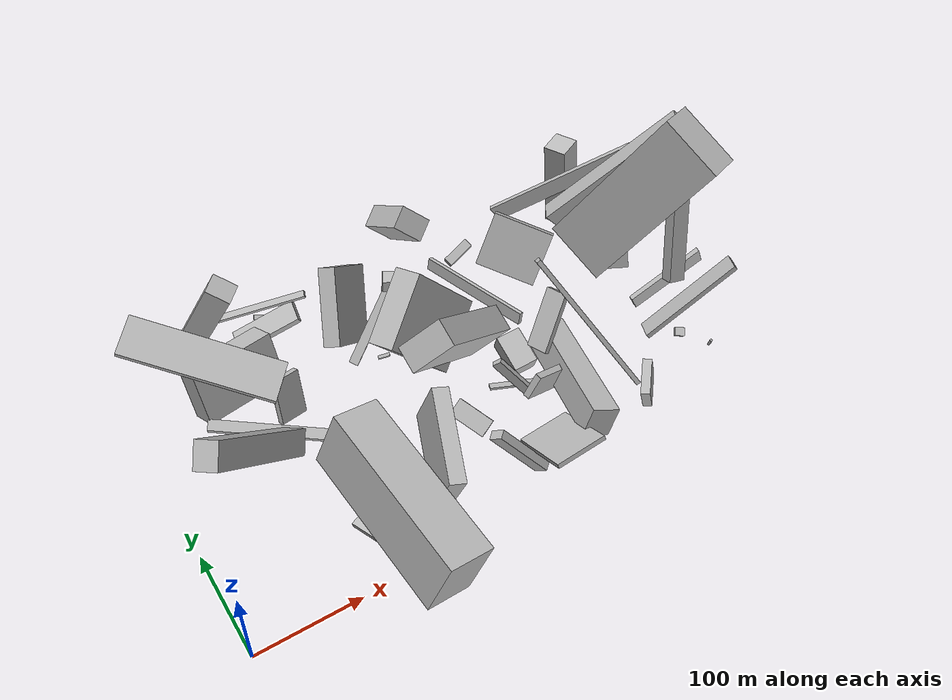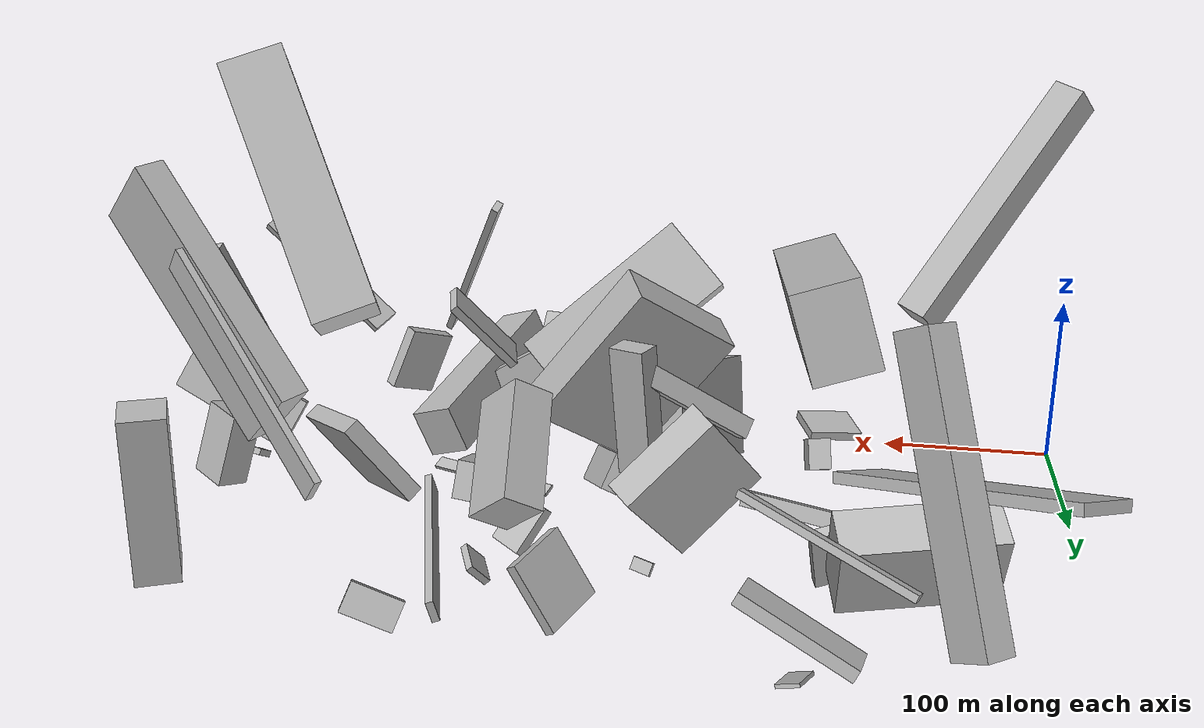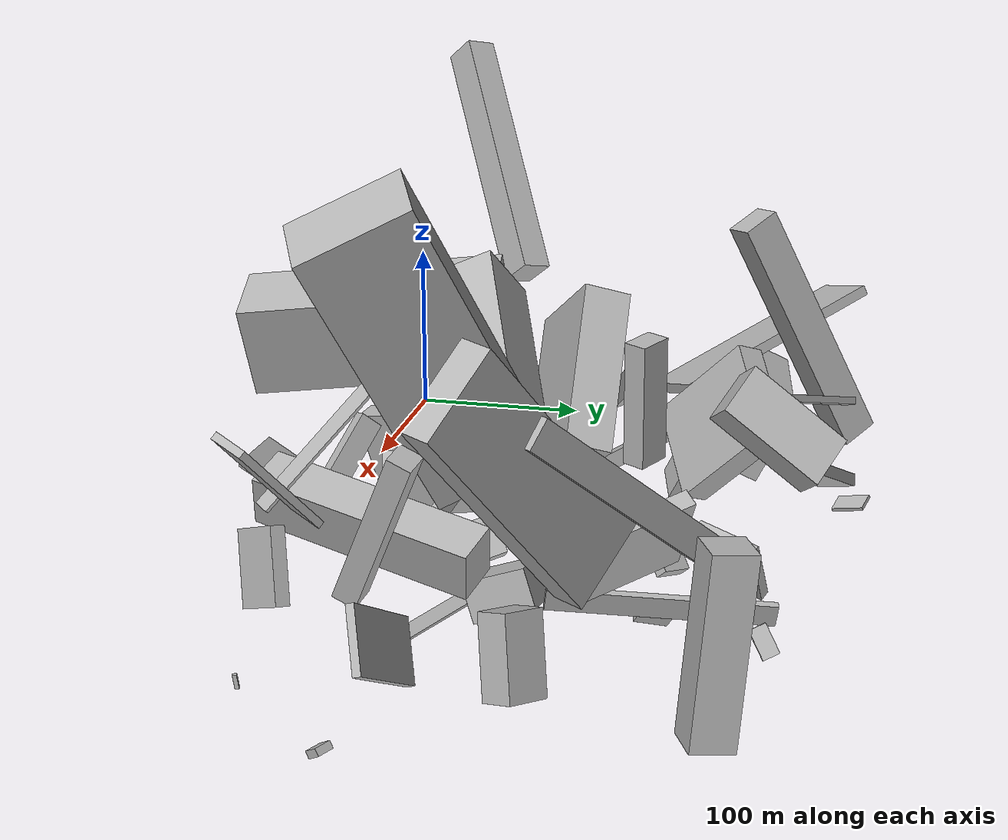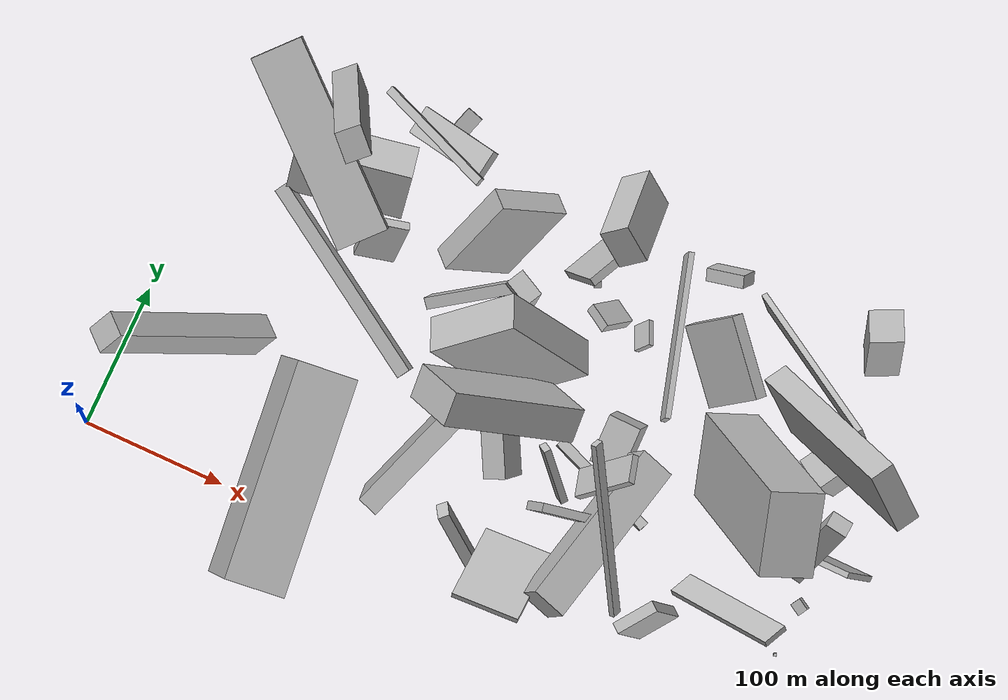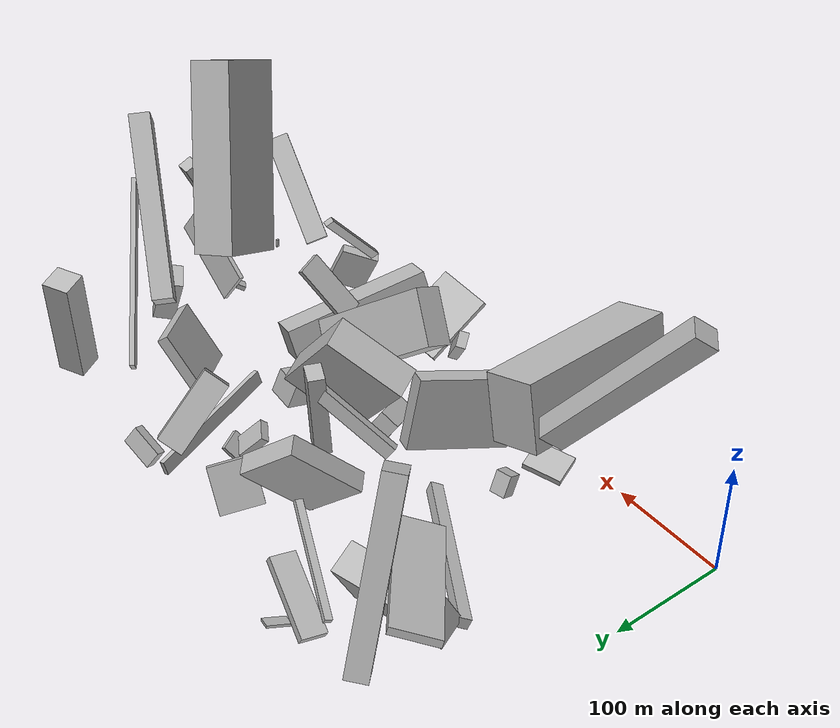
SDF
<sdf version="1.6">
 <world name="default">
  <model name="building_1">
   <static>0</static>
   <pose>120.68918492601038 161.45133720720116 22.464505296555593 -1.9657326540542763 -0.10031874197089789 2.5826246045132604</pose>
   <link name="link">
    <gravity>0</gravity>
    <pose>0 0 5.0 0 0 0</pose>
    <collision name="collision"><geometry><box><size>150 9 10</size></box></geometry></collision>
    <visual name="visual">
     <cast_shadows>0</cast_shadows>
     <geometry><box><size>150 9 10</size></box></geometry>
     <material>
      <script>
       <uri>model://HANNAS_wall/materials/scripts</uri>
       <uri>model://HANNAS_wall/materials/textures</uri>
       <name>vrc/HANNAS_wall</name>
      </script>
     </material>
    </visual>
   </link>
  </model>
  <model name="building_2">
   <static>0</static>
   <pose>130.73497278025522 190.37755811783416 24.62487884282549 1.9944365662318615 -0.22942561202438608 -2.8692951318957665</pose>
   <link name="link">
    <gravity>0</gravity>
    <pose>0 0 3.0 0 0 0</pose>
    <collision name="collision"><geometry><box><size>28 42 6</size></box></geometry></collision>
    <visual name="visual">
     <cast_shadows>0</cast_shadows>
     <geometry><box><size>28 42 6</size></box></geometry>
     <material>
      <script>
       <uri>model://HANNAS_wall/materials/scripts</uri>
       <uri>model://HANNAS_wall/materials/textures</uri>
       <name>vrc/HANNAS_wall</name>
      </script>
     </material>
    </visual>
   </link>
  </model>
  <model name="building_3">
   <static>0</static>
   <pose>352.0127641518744 68.85369513316131 122.52426138870983 0.9390544121925753 -0.49572315677490775 -0.017234432638625136</pose>
   <link name="link">
    <gravity>0</gravity>
    <pose>0 0 3.5 0 0 0</pose>
    <collision name="collision"><geometry><box><size>4 143 7</size></box></geometry></collision>
    <visual name="visual">
     <cast_shadows>0</cast_shadows>
     <geometry><box><size>4 143 7</size></box></geometry>
     <material>
      <script>
       <uri>model://HANNAS_wall/materials/scripts</uri>
       <uri>model://HANNAS_wall/materials/textures</uri>
       <name>vrc/HANNAS_wall</name>
      </script>
     </material>
    </visual>
   </link>
  </model>
  <model name="building_4">
   <static>0</static>
   <pose>351.14596619945087 272.3230376288432 16.891708726268188 -2.0396949758571123 0.4229398748092815 -2.9987078818574395</pose>
   <link name="link">
    <gravity>0</gravity>
    <pose>0 0 4.5 0 0 0</pose>
    <collision name="collision"><geometry><box><size>28 16 9</size></box></geometry></collision>
    <visual name="visual">
     <cast_shadows>0</cast_shadows>
     <geometry><box><size>28 16 9</size></box></geometry>
     <material>
      <script>
       <uri>model://HANNAS_wall/materials/scripts</uri>
       <uri>model://HANNAS_wall/materials/textures</uri>
       <name>vrc/HANNAS_wall</name>
      </script>
     </material>
    </visual>
   </link>
  </model>
  <model name="building_6">
   <static>0</static>
   <pose>92.53380347028127 89.72127168961224 117.08261155660414 0.6617011113182438 -0.2046360781055444 -0.725545873856405</pose>
   <link name="link">
    <gravity>0</gravity>
    <pose>0 0 75.0 0 0 0</pose>
    <collision name="collision"><geometry><box><size>18 21 150</size></box></geometry></collision>
    <visual name="visual">
     <cast_shadows>0</cast_shadows>
     <geometry><box><size>18 21 150</size></box></geometry>
     <material>
      <script>
       <uri>model://HANNAS_wall/materials/scripts</uri>
       <uri>model://HANNAS_wall/materials/textures</uri>
       <name>vrc/HANNAS_wall</name>
      </script>
     </material>
    </visual>
   </link>
  </model>
  <model name="building_10">
   <static>0</static>
   <pose>269.6916527284526 152.64854960087126 67.81588128043366 0.6026211159575662 -0.29611658093652593 -1.1497511403101692</pose>
   <link name="link">
    <gravity>0</gravity>
    <pose>0 0 43.5 0 0 0</pose>
    <collision name="collision"><geometry><box><size>25 66 87</size></box></geometry></collision>
    <visual name="visual">
     <cast_shadows>0</cast_shadows>
     <geometry><box><size>25 66 87</size></box></geometry>
     <material>
      <script>
       <uri>model://HANNAS_wall/materials/scripts</uri>
       <uri>model://HANNAS_wall/materials/textures</uri>
       <name>vrc/HANNAS_wall</name>
      </script>
     </material>
    </visual>
   </link>
  </model>
  <model name="building_11">
   <static>0</static>
   <pose>208.10366239251405 177.88101256907066 90.39304304160237 -0.62271322165962 -0.26697087066892317 2.2608271372268716</pose>
   <link name="link">
    <gravity>0</gravity>
    <pose>0 0 5.5 0 0 0</pose>
    <collision name="collision"><geometry><box><size>8 71 11</size></box></geometry></collision>
    <visual name="visual">
     <cast_shadows>0</cast_shadows>
     <geometry><box><size>8 71 11</size></box></geometry>
     <material>
      <script>
       <uri>model://HANNAS_wall/materials/scripts</uri>
       <uri>model://HANNAS_wall/materials/textures</uri>
       <name>vrc/HANNAS_wall</name>
      </script>
     </material>
    </visual>
   </link>
  </model>
  <model name="building_19">
   <static>0</static>
   <pose>134.7772566717212 15.240827884145318 69.0632913056574 0.2894544298195925 -0.11280912041668863 1.6719229686661174</pose>
   <link name="link">
    <gravity>0</gravity>
    <pose>0 0 28.0 0 0 0</pose>
    <collision name="collision"><geometry><box><size>150 42 56</size></box></geometry></collision>
    <visual name="visual">
     <cast_shadows>0</cast_shadows>
     <geometry><box><size>150 42 56</size></box></geometry>
     <material>
      <script>
       <uri>model://HANNAS_wall/materials/scripts</uri>
       <uri>model://HANNAS_wall/materials/textures</uri>
       <name>vrc/HANNAS_wall</name>
      </script>
     </material>
    </visual>
   </link>
  </model>
  <model name="building_20">
   <static>0</static>
   <pose>406.2985025229419 41.731602334816884 56.30317270117865 1.9301400106152236 -0.1741453656008983 -0.7145502059853779</pose>
   <link name="link">
    <gravity>0</gravity>
    <pose>0 0 15.5 0 0 0</pose>
    <collision name="collision"><geometry><box><size>8 39 31</size></box></geometry></collision>
    <visual name="visual">
     <cast_shadows>0</cast_shadows>
     <geometry><box><size>8 39 31</size></box></geometry>
     <material>
      <script>
       <uri>model://HANNAS_wall/materials/scripts</uri>
       <uri>model://HANNAS_wall/materials/textures</uri>
       <name>vrc/HANNAS_wall</name>
      </script>
     </material>
    </visual>
   </link>
  </model>
  <model name="building_23">
   <static>0</static>
   <pose>122.0657754250803 182.04361859381285 62.13934422297965 -1.3091612095978662 -0.23787313093001133 0.7982923186898688</pose>
   <link name="link">
    <gravity>0</gravity>
    <pose>0 0 70.0 0 0 0</pose>
    <collision name="collision"><geometry><box><size>37 6 140</size></box></geometry></collision>
    <visual name="visual">
     <cast_shadows>0</cast_shadows>
     <geometry><box><size>37 6 140</size></box></geometry>
     <material>
      <script>
       <uri>model://HANNAS_wall/materials/scripts</uri>
       <uri>model://HANNAS_wall/materials/textures</uri>
       <name>vrc/HANNAS_wall</name>
      </script>
     </material>
    </visual>
   </link>
  </model>
  <model name="building_27">
   <static>0</static>
   <pose>231.81833110050755 186.4684938501138 58.32583272100922 0.053317810930111814 -0.05891769316808183 2.6690680532145854</pose>
   <link name="link">
    <gravity>0</gravity>
    <pose>0 0 34.5 0 0 0</pose>
    <collision name="collision"><geometry><box><size>20 13 69</size></box></geometry></collision>
    <visual name="visual">
     <cast_shadows>0</cast_shadows>
     <geometry><box><size>20 13 69</size></box></geometry>
     <material>
      <script>
       <uri>model://HANNAS_wall/materials/scripts</uri>
       <uri>model://HANNAS_wall/materials/textures</uri>
       <name>vrc/HANNAS_wall</name>
      </script>
     </material>
    </visual>
   </link>
  </model>
  <model name="building_28">
   <static>0</static>
   <pose>409.78417329256786 57.91215758363532 84.76116309426942 -0.4402261223009895 0.7804004660410867 -0.7560465942532574</pose>
   <link name="link">
    <gravity>0</gravity>
    <pose>0 0 46.5 0 0 0</pose>
    <collision name="collision"><geometry><box><size>4 18 93</size></box></geometry></collision>
    <visual name="visual">
     <cast_shadows>0</cast_shadows>
     <geometry><box><size>4 18 93</size></box></geometry>
     <material>
      <script>
       <uri>model://HANNAS_wall/materials/scripts</uri>
       <uri>model://HANNAS_wall/materials/textures</uri>
       <name>vrc/HANNAS_wall</name>
      </script>
     </material>
    </visual>
   </link>
  </model>
  <model name="building_30">
   <static>0</static>
   <pose>257.9153695807103 92.15419698621969 22.5616210501819 2.607225962856432 -0.2615098005218977 2.056325890839951</pose>
   <link name="link">
    <gravity>0</gravity>
    <pose>0 0 11.0 0 0 0</pose>
    <collision name="collision"><geometry><box><size>35 17 22</size></box></geometry></collision>
    <visual name="visual">
     <cast_shadows>0</cast_shadows>
     <geometry><box><size>35 17 22</size></box></geometry>
     <material>
      <script>
       <uri>model://HANNAS_wall/materials/scripts</uri>
       <uri>model://HANNAS_wall/materials/textures</uri>
       <name>vrc/HANNAS_wall</name>
      </script>
     </material>
    </visual>
   </link>
  </model>
  <model name="building_31">
   <static>0</static>
   <pose>336.20162663925566 214.10482475108705 16.428369056676065 -0.24894715985904242 -0.10599092141484638 -1.2882932310939565</pose>
   <link name="link">
    <gravity>0</gravity>
    <pose>0 0 6.0 0 0 0</pose>
    <collision name="collision"><geometry><box><size>116 4 12</size></box></geometry></collision>
    <visual name="visual">
     <cast_shadows>0</cast_shadows>
     <geometry><box><size>116 4 12</size></box></geometry>
     <material>
      <script>
       <uri>model://HANNAS_wall/materials/scripts</uri>
       <uri>model://HANNAS_wall/materials/textures</uri>
       <name>vrc/HANNAS_wall</name>
      </script>
     </material>
    </visual>
   </link>
  </model>
  <model name="building_32">
   <static>0</static>
   <pose>334.2656831763497 100.27506406508184 101.9107099714146 2.7446630725467176 -0.848288243672968 0.5714786076773894</pose>
   <link name="link">
    <gravity>0</gravity>
    <pose>0 0 2.5 0 0 0</pose>
    <collision name="collision"><geometry><box><size>53 20 5</size></box></geometry></collision>
    <visual name="visual">
     <cast_shadows>0</cast_shadows>
     <geometry><box><size>53 20 5</size></box></geometry>
     <material>
      <script>
       <uri>model://HANNAS_wall/materials/scripts</uri>
       <uri>model://HANNAS_wall/materials/textures</uri>
       <name>vrc/HANNAS_wall</name>
      </script>
     </material>
    </visual>
   </link>
  </model>
  <model name="building_35">
   <static>0</static>
   <pose>218.79266667025968 65.33158002083997 41.70170531443302 1.4018804081164236 0.23228788188039837 -1.9302767267517424</pose>
   <link name="link">
    <gravity>0</gravity>
    <pose>0 0 7.5 0 0 0</pose>
    <collision name="collision"><geometry><box><size>85 61 15</size></box></geometry></collision>
    <visual name="visual">
     <cast_shadows>0</cast_shadows>
     <geometry><box><size>85 61 15</size></box></geometry>
     <material>
      <script>
       <uri>model://HANNAS_wall/materials/scripts</uri>
       <uri>model://HANNAS_wall/materials/textures</uri>
       <name>vrc/HANNAS_wall</name>
      </script>
     </material>
    </visual>
   </link>
  </model>
  <model name="building_40">
   <static>0</static>
   <pose>320.0355718546526 134.17473831501744 19.12638445530611 1.4482777650327379 -0.3266651140839087 1.5735830774075494</pose>
   <link name="link">
    <gravity>0</gravity>
    <pose>0 0 11.5 0 0 0</pose>
    <collision name="collision"><geometry><box><size>34 22 23</size></box></geometry></collision>
    <visual name="visual">
     <cast_shadows>0</cast_shadows>
     <geometry><box><size>34 22 23</size></box></geometry>
     <material>
      <script>
       <uri>model://HANNAS_wall/materials/scripts</uri>
       <uri>model://HANNAS_wall/materials/textures</uri>
       <name>vrc/HANNAS_wall</name>
      </script>
     </material>
    </visual>
   </link>
  </model>
  <model name="building_43">
   <static>0</static>
   <pose>355.4908782506045 64.87245240081512 51.61978927264356 1.2473281626751396 -0.17527101539970497 -1.7877286191008834</pose>
   <link name="link">
    <gravity>0</gravity>
    <pose>0 0 12.5 0 0 0</pose>
    <collision name="collision"><geometry><box><size>122 28 25</size></box></geometry></collision>
    <visual name="visual">
     <cast_shadows>0</cast_shadows>
     <geometry><box><size>122 28 25</size></box></geometry>
     <material>
      <script>
       <uri>model://HANNAS_wall/materials/scripts</uri>
       <uri>model://HANNAS_wall/materials/textures</uri>
       <name>vrc/HANNAS_wall</name>
      </script>
     </material>
    </visual>
   </link>
  </model>
  <model name="building_45">
   <static>0</static>
   <pose>320.2121831328495 211.4679357275794 13.749399087733906 2.4448805696083675 -0.23497523686069427 -1.1495813719133037</pose>
   <link name="link">
    <gravity>0</gravity>
    <pose>0 0 7.5 0 0 0</pose>
    <collision name="collision"><geometry><box><size>18 4 15</size></box></geometry></collision>
    <visual name="visual">
     <cast_shadows>0</cast_shadows>
     <geometry><box><size>18 4 15</size></box></geometry>
     <material>
      <script>
       <uri>model://HANNAS_wall/materials/scripts</uri>
       <uri>model://HANNAS_wall/materials/textures</uri>
       <name>vrc/HANNAS_wall</name>
      </script>
     </material>
    </visual>
   </link>
  </model>
  <model name="building_47">
   <static>0</static>
   <pose>148.3384775673289 272.0799620572305 22.274149033320757 0.18369840986863778 -0.4323491475498418 -0.23836530060278613</pose>
   <link name="link">
    <gravity>0</gravity>
    <pose>0 0 3.5 0 0 0</pose>
    <collision name="collision"><geometry><box><size>64 21 7</size></box></geometry></collision>
    <visual name="visual">
     <cast_shadows>0</cast_shadows>
     <geometry><box><size>64 21 7</size></box></geometry>
     <material>
      <script>
       <uri>model://HANNAS_wall/materials/scripts</uri>
       <uri>model://HANNAS_wall/materials/textures</uri>
       <name>vrc/HANNAS_wall</name>
      </script>
     </material>
    </visual>
   </link>
  </model>
  <model name="building_54">
   <static>0</static>
   <pose>299.1345686601552 42.94752845976 39.50940518472878 0.16533238484044963 1.0051140749707599 -1.3929208963406012</pose>
   <link name="link">
    <gravity>0</gravity>
    <pose>0 0 30.5 0 0 0</pose>
    <collision name="collision"><geometry><box><size>4 47 61</size></box></geometry></collision>
    <visual name="visual">
     <cast_shadows>0</cast_shadows>
     <geometry><box><size>4 47 61</size></box></geometry>
     <material>
      <script>
       <uri>model://HANNAS_wall/materials/scripts</uri>
       <uri>model://HANNAS_wall/materials/textures</uri>
       <name>vrc/HANNAS_wall</name>
      </script>
     </material>
    </visual>
   </link>
  </model>
  <model name="building_56">
   <static>0</static>
   <pose>448.9970439224969 116.94305210319777 38.42751929280119 1.06974655189705 -0.22942385509557253 1.6201673655518098</pose>
   <link name="link">
    <gravity>0</gravity>
    <pose>0 0 37.0 0 0 0</pose>
    <collision name="collision"><geometry><box><size>4 32 74</size></box></geometry></collision>
    <visual name="visual">
     <cast_shadows>0</cast_shadows>
     <geometry><box><size>4 32 74</size></box></geometry>
     <material>
      <script>
       <uri>model://HANNAS_wall/materials/scripts</uri>
       <uri>model://HANNAS_wall/materials/textures</uri>
       <name>vrc/HANNAS_wall</name>
      </script>
     </material>
    </visual>
   </link>
  </model>
  <model name="building_57">
   <static>0</static>
   <pose>356.4395652561491 228.08573730655962 73.43851636808617 1.8143394906197459 0.5834662746108749 0.8551941055493584</pose>
   <link name="link">
    <gravity>0</gravity>
    <pose>0 0 28.5 0 0 0</pose>
    <collision name="collision"><geometry><box><size>9 51 57</size></box></geometry></collision>
    <visual name="visual">
     <cast_shadows>0</cast_shadows>
     <geometry><box><size>9 51 57</size></box></geometry>
     <material>
      <script>
       <uri>model://HANNAS_wall/materials/scripts</uri>
       <uri>model://HANNAS_wall/materials/textures</uri>
       <name>vrc/HANNAS_wall</name>
      </script>
     </material>
    </visual>
   </link>
  </model>
  <model name="building_58">
   <static>0</static>
   <pose>260.5584905077376 24.488459455909368 51.70489122324854 1.2383397169335102 -0.8414184910730053 2.5611236991652047</pose>
   <link name="link">
    <gravity>0</gravity>
    <pose>0 0 4.0 0 0 0</pose>
    <collision name="collision"><geometry><box><size>61 13 8</size></box></geometry></collision>
    <visual name="visual">
     <cast_shadows>0</cast_shadows>
     <geometry><box><size>61 13 8</size></box></geometry>
     <material>
      <script>
       <uri>model://HANNAS_wall/materials/scripts</uri>
       <uri>model://HANNAS_wall/materials/textures</uri>
       <name>vrc/HANNAS_wall</name>
      </script>
     </material>
    </visual>
   </link>
  </model>
  <model name="building_59">
   <static>0</static>
   <pose>383.71833566183125 254.5633019491852 67.60112040060852 0.9050835403720302 0.005669533655554093 0.9306886506298212</pose>
   <link name="link">
    <gravity>0</gravity>
    <pose>0 0 75.0 0 0 0</pose>
    <collision name="collision"><geometry><box><size>4 16 150</size></box></geometry></collision>
    <visual name="visual">
     <cast_shadows>0</cast_shadows>
     <geometry><box><size>4 16 150</size></box></geometry>
     <material>
      <script>
       <uri>model://HANNAS_wall/materials/scripts</uri>
       <uri>model://HANNAS_wall/materials/textures</uri>
       <name>vrc/HANNAS_wall</name>
      </script>
     </material>
    </visual>
   </link>
  </model>
  <model name="building_60">
   <static>0</static>
   <pose>488.32052491099927 88.72163590904158 5.930508036298704 -2.9617902483447334 1.0576549709236507 1.2003187688799644</pose>
   <link name="link">
    <gravity>0</gravity>
    <pose>0 0 4.0 0 0 0</pose>
    <collision name="collision"><geometry><box><size>4 9 8</size></box></geometry></collision>
    <visual name="visual">
     <cast_shadows>0</cast_shadows>
     <geometry><box><size>4 9 8</size></box></geometry>
     <material>
      <script>
       <uri>model://HANNAS_wall/materials/scripts</uri>
       <uri>model://HANNAS_wall/materials/textures</uri>
       <name>vrc/HANNAS_wall</name>
      </script>
     </material>
    </visual>
   </link>
  </model>
  <model name="building_61">
   <static>0</static>
   <pose>460.49595077800336 272.08874839928785 62.16063756286397 -0.17682511024077852 -1.4673658674885217 2.18941720285874</pose>
   <link name="link">
    <gravity>0</gravity>
    <pose>0 0 11.0 0 0 0</pose>
    <collision name="collision"><geometry><box><size>93 23 22</size></box></geometry></collision>
    <visual name="visual">
     <cast_shadows>0</cast_shadows>
     <geometry><box><size>93 23 22</size></box></geometry>
     <material>
      <script>
       <uri>model://HANNAS_wall/materials/scripts</uri>
       <uri>model://HANNAS_wall/materials/textures</uri>
       <name>vrc/HANNAS_wall</name>
      </script>
     </material>
    </visual>
   </link>
  </model>
  <model name="building_63">
   <static>0</static>
   <pose>88.70231832712545 258.0517712097698 91.98305419709573 1.823778059073785 -1.1127874750434064 -1.0537264671055462</pose>
   <link name="link">
    <gravity>0</gravity>
    <pose>0 0 9.0 0 0 0</pose>
    <collision name="collision"><geometry><box><size>150 22 18</size></box></geometry></collision>
    <visual name="visual">
     <cast_shadows>0</cast_shadows>
     <geometry><box><size>150 22 18</size></box></geometry>
     <material>
      <script>
       <uri>model://HANNAS_wall/materials/scripts</uri>
       <uri>model://HANNAS_wall/materials/textures</uri>
       <name>vrc/HANNAS_wall</name>
      </script>
     </material>
    </visual>
   </link>
  </model>
  <model name="building_64">
   <static>0</static>
   <pose>422.88478441105735 199.50828231587977 80.83654382536392 0.7493625902195143 0.06405323321960309 1.0377611483007807</pose>
   <link name="link">
    <gravity>0</gravity>
    <pose>0 0 74.0 0 0 0</pose>
    <collision name="collision"><geometry><box><size>17 48 148</size></box></geometry></collision>
    <visual name="visual">
     <cast_shadows>0</cast_shadows>
     <geometry><box><size>17 48 148</size></box></geometry>
     <material>
      <script>
       <uri>model://HANNAS_wall/materials/scripts</uri>
       <uri>model://HANNAS_wall/materials/textures</uri>
       <name>vrc/HANNAS_wall</name>
      </script>
     </material>
    </visual>
   </link>
  </model>
  <model name="building_67">
   <static>0</static>
   <pose>136.2206496573705 43.83406878992356 31.63077013633476 -3.0366959140460628 -0.1353542403393924 -1.2035042244865528</pose>
   <link name="link">
    <gravity>0</gravity>
    <pose>0 0 2.5 0 0 0</pose>
    <collision name="collision"><geometry><box><size>26 32 5</size></box></geometry></collision>
    <visual name="visual">
     <cast_shadows>0</cast_shadows>
     <geometry><box><size>26 32 5</size></box></geometry>
     <material>
      <script>
       <uri>model://HANNAS_wall/materials/scripts</uri>
       <uri>model://HANNAS_wall/materials/textures</uri>
       <name>vrc/HANNAS_wall</name>
      </script>
     </material>
    </visual>
   </link>
  </model>
  <model name="building_68">
   <static>0</static>
   <pose>135.87816562739158 261.97850091111667 65.56254263883918 -1.273145413763801 -0.2924696258033734 -0.4130796004737364</pose>
   <link name="link">
    <gravity>0</gravity>
    <pose>0 0 3.0 0 0 0</pose>
    <collision name="collision"><geometry><box><size>94 4 6</size></box></geometry></collision>
    <visual name="visual">
     <cast_shadows>0</cast_shadows>
     <geometry><box><size>94 4 6</size></box></geometry>
     <material>
      <script>
       <uri>model://HANNAS_wall/materials/scripts</uri>
       <uri>model://HANNAS_wall/materials/textures</uri>
       <name>vrc/HANNAS_wall</name>
      </script>
     </material>
    </visual>
   </link>
  </model>
  <model name="building_70">
   <static>0</static>
   <pose>401.97318024882236 143.94262509601515 116.84963937059754 0.46283116043441863 0.2774796920781997 0.42658962389295285</pose>
   <link name="link">
    <gravity>0</gravity>
    <pose>0 0 75.0 0 0 0</pose>
    <collision name="collision"><geometry><box><size>36 57 150</size></box></geometry></collision>
    <visual name="visual">
     <cast_shadows>0</cast_shadows>
     <geometry><box><size>36 57 150</size></box></geometry>
     <material>
      <script>
       <uri>model://HANNAS_wall/materials/scripts</uri>
       <uri>model://HANNAS_wall/materials/textures</uri>
       <name>vrc/HANNAS_wall</name>
      </script>
     </material>
    </visual>
   </link>
  </model>
  <model name="building_75">
   <static>0</static>
   <pose>319.93343101563505 68.36196335973912 59.8913492377411 1.476491888612136 -0.47175757138286717 -2.894179934149343</pose>
   <link name="link">
    <gravity>0</gravity>
    <pose>0 0 3.0 0 0 0</pose>
    <collision name="collision"><geometry><box><size>44 24 6</size></box></geometry></collision>
    <visual name="visual">
     <cast_shadows>0</cast_shadows>
     <geometry><box><size>44 24 6</size></box></geometry>
     <material>
      <script>
       <uri>model://HANNAS_wall/materials/scripts</uri>
       <uri>model://HANNAS_wall/materials/textures</uri>
       <name>vrc/HANNAS_wall</name>
      </script>
     </material>
    </visual>
   </link>
  </model>
  <model name="building_81">
   <static>0</static>
   <pose>252.93475788468422 101.85983205579939 111.77847796243373 1.0320816605816145 -0.6527040098764662 -2.745251825642356</pose>
   <link name="link">
    <gravity>0</gravity>
    <pose>0 0 12.0 0 0 0</pose>
    <collision name="collision"><geometry><box><size>105 44 24</size></box></geometry></collision>
    <visual name="visual">
     <cast_shadows>0</cast_shadows>
     <geometry><box><size>105 44 24</size></box></geometry>
     <material>
      <script>
       <uri>model://HANNAS_wall/materials/scripts</uri>
       <uri>model://HANNAS_wall/materials/textures</uri>
       <name>vrc/HANNAS_wall</name>
      </script>
     </material>
    </visual>
   </link>
  </model>
  <model name="building_84">
   <static>0</static>
   <pose>313.1314107694766 82.27680254437425 33.1340581648765 0.1239516534438897 0.7545026401138775 2.545575684948299</pose>
   <link name="link">
    <gravity>0</gravity>
    <pose>0 0 23.5 0 0 0</pose>
    <collision name="collision"><geometry><box><size>9 5 47</size></box></geometry></collision>
    <visual name="visual">
     <cast_shadows>0</cast_shadows>
     <geometry><box><size>9 5 47</size></box></geometry>
     <material>
      <script>
       <uri>model://HANNAS_wall/materials/scripts</uri>
       <uri>model://HANNAS_wall/materials/textures</uri>
       <name>vrc/HANNAS_wall</name>
      </script>
     </material>
    </visual>
   </link>
  </model>
  <model name="building_92">
   <static>0</static>
   <pose>266.7780631535783 241.03232747477352 22.18371555750329 2.821605002840866 -1.0323071251868179 -0.15141174393903736</pose>
   <link name="link">
    <gravity>0</gravity>
    <pose>0 0 3.0 0 0 0</pose>
    <collision name="collision"><geometry><box><size>39 36 6</size></box></geometry></collision>
    <visual name="visual">
     <cast_shadows>0</cast_shadows>
     <geometry><box><size>39 36 6</size></box></geometry>
     <material>
      <script>
       <uri>model://HANNAS_wall/materials/scripts</uri>
       <uri>model://HANNAS_wall/materials/textures</uri>
       <name>vrc/HANNAS_wall</name>
      </script>
     </material>
    </visual>
   </link>
  </model>
  <model name="building_95">
   <static>0</static>
   <pose>193.7653931577089 200.90294368367415 49.01213349168748 -0.45680304581881986 0.7065742770905364 0.48642389175957573</pose>
   <link name="link">
    <gravity>0</gravity>
    <pose>0 0 34.5 0 0 0</pose>
    <collision name="collision"><geometry><box><size>55 16 69</size></box></geometry></collision>
    <visual name="visual">
     <cast_shadows>0</cast_shadows>
     <geometry><box><size>55 16 69</size></box></geometry>
     <material>
      <script>
       <uri>model://HANNAS_wall/materials/scripts</uri>
       <uri>model://HANNAS_wall/materials/textures</uri>
       <name>vrc/HANNAS_wall</name>
      </script>
     </material>
    </visual>
   </link>
  </model>
  <model name="building_100">
   <static>0</static>
   <pose>471.47998622827777 172.8822427916765 30.324789474940076 0.16509935772957782 0.24095690921611979 -2.1203125467062427</pose>
   <link name="link">
    <gravity>0</gravity>
    <pose>0 0 20.5 0 0 0</pose>
    <collision name="collision"><geometry><box><size>18 23 41</size></box></geometry></collision>
    <visual name="visual">
     <cast_shadows>0</cast_shadows>
     <geometry><box><size>18 23 41</size></box></geometry>
     <material>
      <script>
       <uri>model://HANNAS_wall/materials/scripts</uri>
       <uri>model://HANNAS_wall/materials/textures</uri>
       <name>vrc/HANNAS_wall</name>
      </script>
     </material>
    </visual>
   </link>
  </model>
  <model name="building_108">
   <static>0</static>
   <pose>144.69029681776507 280.8685682519164 7.952436962470258 1.3267880976136026 -0.31259369426949224 2.888745952796154</pose>
   <link name="link">
    <gravity>0</gravity>
    <pose>0 0 9.5 0 0 0</pose>
    <collision name="collision"><geometry><box><size>12 2 19</size></box></geometry></collision>
    <visual name="visual">
     <cast_shadows>0</cast_shadows>
     <geometry><box><size>12 2 19</size></box></geometry>
     <material>
      <script>
       <uri>model://HANNAS_wall/materials/scripts</uri>
       <uri>model://HANNAS_wall/materials/textures</uri>
       <name>vrc/HANNAS_wall</name>
      </script>
     </material>
    </visual>
   </link>
  </model>
  <model name="building_110">
   <static>0</static>
   <pose>136.17869305925393 81.08159723956403 26.976383082217563 1.5551006056099457 1.0997027209847514 1.7808185718346385</pose>
   <link name="link">
    <gravity>0</gravity>
    <pose>0 0 6.5 0 0 0</pose>
    <collision name="collision"><geometry><box><size>18 13 13</size></box></geometry></collision>
    <visual name="visual">
     <cast_shadows>0</cast_shadows>
     <geometry><box><size>18 13 13</size></box></geometry>
     <material>
      <script>
       <uri>model://HANNAS_wall/materials/scripts</uri>
       <uri>model://HANNAS_wall/materials/textures</uri>
       <name>vrc/HANNAS_wall</name>
      </script>
     </material>
    </visual>
   </link>
  </model>
  <model name="building_112">
   <static>0</static>
   <pose>484.58385925328923 45.68876345812845 32.67476521808783 -1.4206150930300339 0.014601664001667947 0.22872003591835569</pose>
   <link name="link">
    <gravity>0</gravity>
    <pose>0 0 1.0 0 0 0</pose>
    <collision name="collision"><geometry><box><size>2 7 2</size></box></geometry></collision>
    <visual name="visual">
     <cast_shadows>0</cast_shadows>
     <geometry><box><size>2 7 2</size></box></geometry>
     <material>
      <script>
       <uri>model://HANNAS_wall/materials/scripts</uri>
       <uri>model://HANNAS_wall/materials/textures</uri>
       <name>vrc/HANNAS_wall</name>
      </script>
     </material>
    </visual>
   </link>
  </model>
  <model name="building_118">
   <static>0</static>
   <pose>132.74376006900786 232.72057596369837 39.512558715407515 -1.407227340701773 -1.0992172850113369 1.6138790508401373</pose>
   <link name="link">
    <gravity>0</gravity>
    <pose>0 0 40.0 0 0 0</pose>
    <collision name="collision"><geometry><box><size>48 26 80</size></box></geometry></collision>
    <visual name="visual">
     <cast_shadows>0</cast_shadows>
     <geometry><box><size>48 26 80</size></box></geometry>
     <material>
      <script>
       <uri>model://HANNAS_wall/materials/scripts</uri>
       <uri>model://HANNAS_wall/materials/textures</uri>
       <name>vrc/HANNAS_wall</name>
      </script>
     </material>
    </visual>
   </link>
  </model>
  <model name="building_119">
   <static>0</static>
   <pose>290.043508832817 205.27985398173558 30.97437387042249 0.28755743996189403 -0.835219281937518 -2.3618897082936394</pose>
   <link name="link">
    <gravity>0</gravity>
    <pose>0 0 3.5 0 0 0</pose>
    <collision name="collision"><geometry><box><size>27 18 7</size></box></geometry></collision>
    <visual name="visual">
     <cast_shadows>0</cast_shadows>
     <geometry><box><size>27 18 7</size></box></geometry>
     <material>
      <script>
       <uri>model://HANNAS_wall/materials/scripts</uri>
       <uri>model://HANNAS_wall/materials/textures</uri>
       <name>vrc/HANNAS_wall</name>
      </script>
     </material>
    </visual>
   </link>
  </model>
  <model name="building_122">
   <static>0</static>
   <pose>272.30282310665194 229.30220126139199 12.761249718240911 1.9436121922582323 0.04377596878298182 -2.7190685481794112</pose>
   <link name="link">
    <gravity>0</gravity>
    <pose>0 0 1.0 0 0 0</pose>
    <collision name="collision"><geometry><box><size>5 22 2</size></box></geometry></collision>
    <visual name="visual">
     <cast_shadows>0</cast_shadows>
     <geometry><box><size>5 22 2</size></box></geometry>
     <material>
      <script>
       <uri>model://HANNAS_wall/materials/scripts</uri>
       <uri>model://HANNAS_wall/materials/textures</uri>
       <name>vrc/HANNAS_wall</name>
      </script>
     </material>
    </visual>
   </link>
  </model>
  <model name="building_124">
   <static>0</static>
   <pose>292.0764161102313 257.7611523703829 90.72162540701657 0.6906827493479399 -0.6771806034029334 -1.4709528600324702</pose>
   <link name="link">
    <gravity>0</gravity>
    <pose>0 0 14.5 0 0 0</pose>
    <collision name="collision"><geometry><box><size>60 21 29</size></box></geometry></collision>
    <visual name="visual">
     <cast_shadows>0</cast_shadows>
     <geometry><box><size>60 21 29</size></box></geometry>
     <material>
      <script>
       <uri>model://HANNAS_wall/materials/scripts</uri>
       <uri>model://HANNAS_wall/materials/textures</uri>
       <name>vrc/HANNAS_wall</name>
      </script>
     </material>
    </visual>
   </link>
  </model>
  <model name="building_130">
   <static>0</static>
   <pose>229.91226234316468 199.66748233943724 10.168118881399684 2.8237217237544474 1.0216571839289972 0.9991925598299778</pose>
   <link name="link">
    <gravity>0</gravity>
    <pose>0 0 1.5 0 0 0</pose>
    <collision name="collision"><geometry><box><size>7 11 3</size></box></geometry></collision>
    <visual name="visual">
     <cast_shadows>0</cast_shadows>
     <geometry><box><size>7 11 3</size></box></geometry>
     <material>
      <script>
       <uri>model://HANNAS_wall/materials/scripts</uri>
       <uri>model://HANNAS_wall/materials/textures</uri>
       <name>vrc/HANNAS_wall</name>
      </script>
     </material>
    </visual>
   </link>
  </model>
  <model name="building_138">
   <static>0</static>
   <pose>473.06078158714337 98.08661385512941 75.58758662158469 -0.42255813395809144 0.14441947181771506 -0.13053079537189108</pose>
   <link name="link">
    <gravity>0</gravity>
    <pose>0 0 40.0 0 0 0</pose>
    <collision name="collision"><geometry><box><size>15 12 80</size></box></geometry></collision>
    <visual name="visual">
     <cast_shadows>0</cast_shadows>
     <geometry><box><size>15 12 80</size></box></geometry>
     <material>
      <script>
       <uri>model://HANNAS_wall/materials/scripts</uri>
       <uri>model://HANNAS_wall/materials/textures</uri>
       <name>vrc/HANNAS_wall</name>
      </script>
     </material>
    </visual>
   </link>
  </model>
  <model name="building_143">
   <static>0</static>
   <pose>369.5627054438084 90.44035325353993 7.948339301162943 1.5562562773597308 -0.378720997769542 -1.9382565199761257</pose>
   <link name="link">
    <gravity>0</gravity>
    <pose>0 0 40.0 0 0 0</pose>
    <collision name="collision"><geometry><box><size>8 2 80</size></box></geometry></collision>
    <visual name="visual">
     <cast_shadows>0</cast_shadows>
     <geometry><box><size>8 2 80</size></box></geometry>
     <material>
      <script>
       <uri>model://HANNAS_wall/materials/scripts</uri>
       <uri>model://HANNAS_wall/materials/textures</uri>
       <name>vrc/HANNAS_wall</name>
      </script>
     </material>
    </visual>
   </link>
  </model>
 </world>
</sdf>
